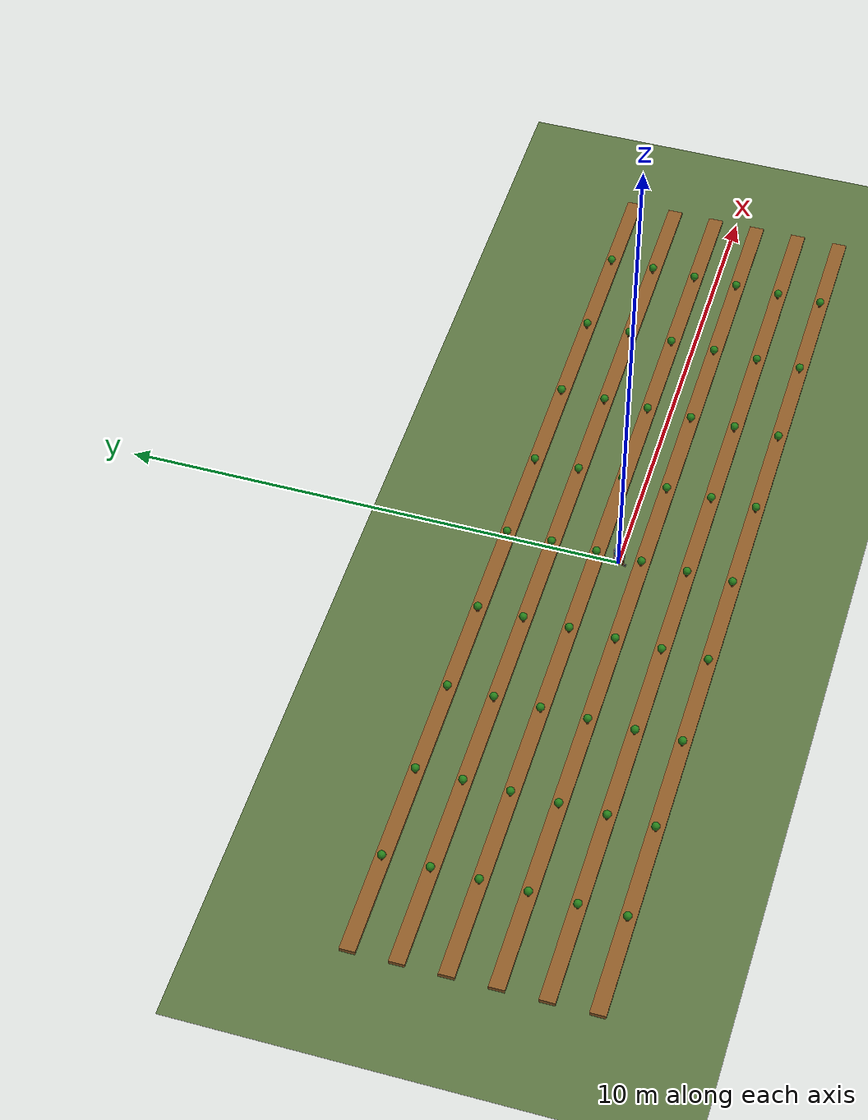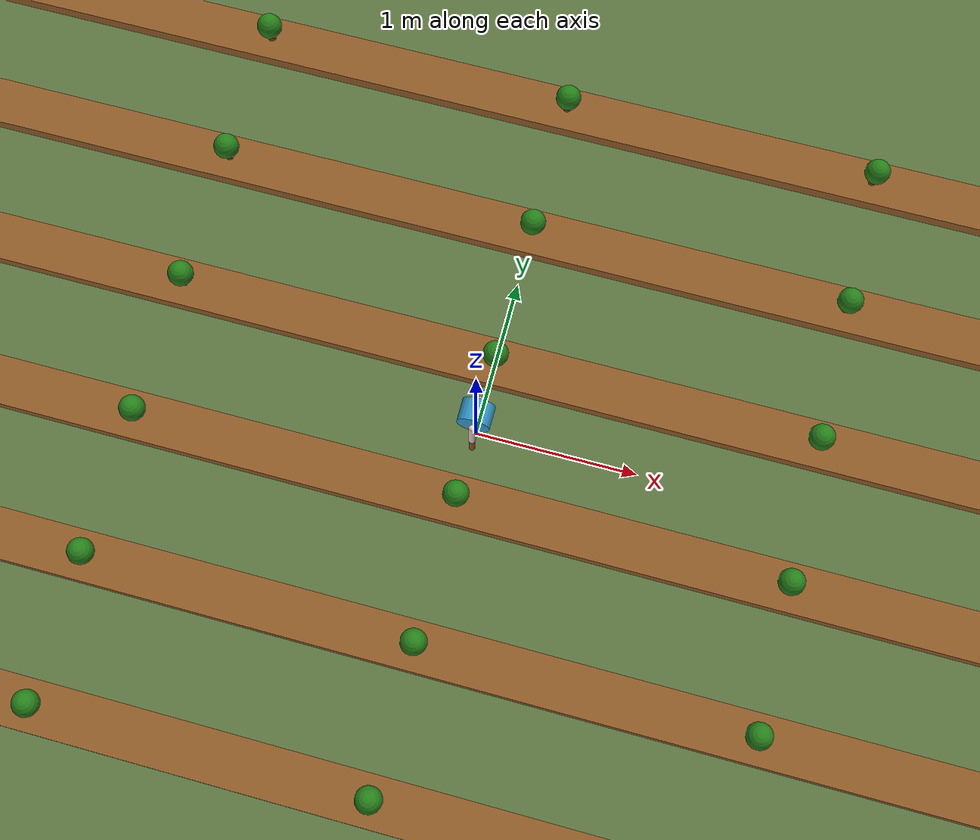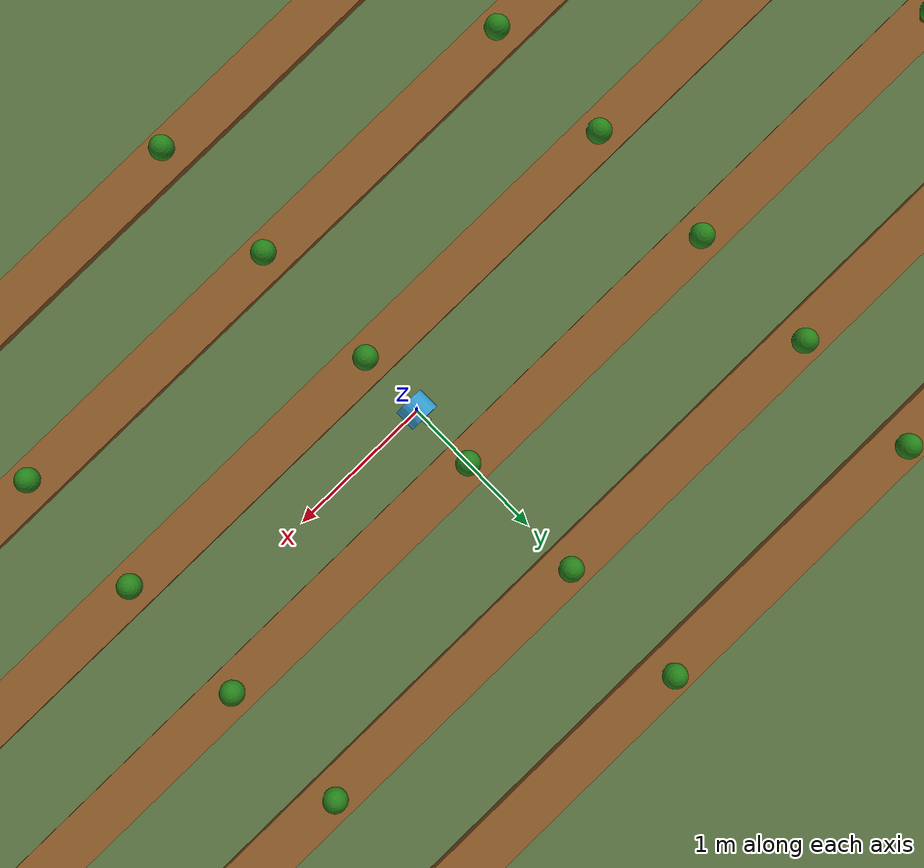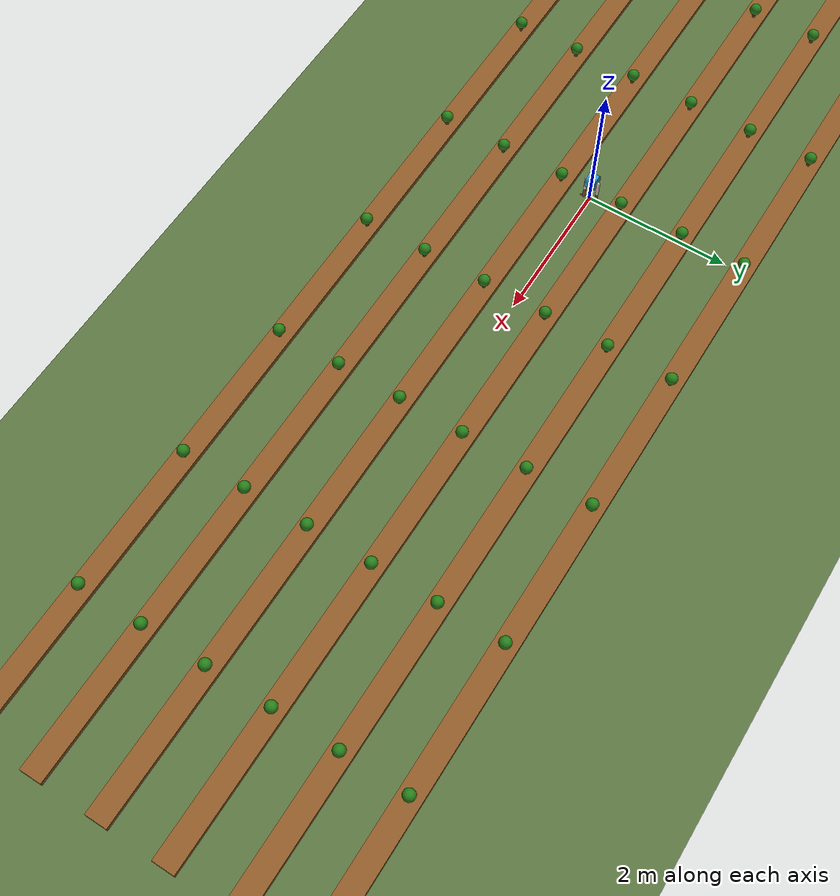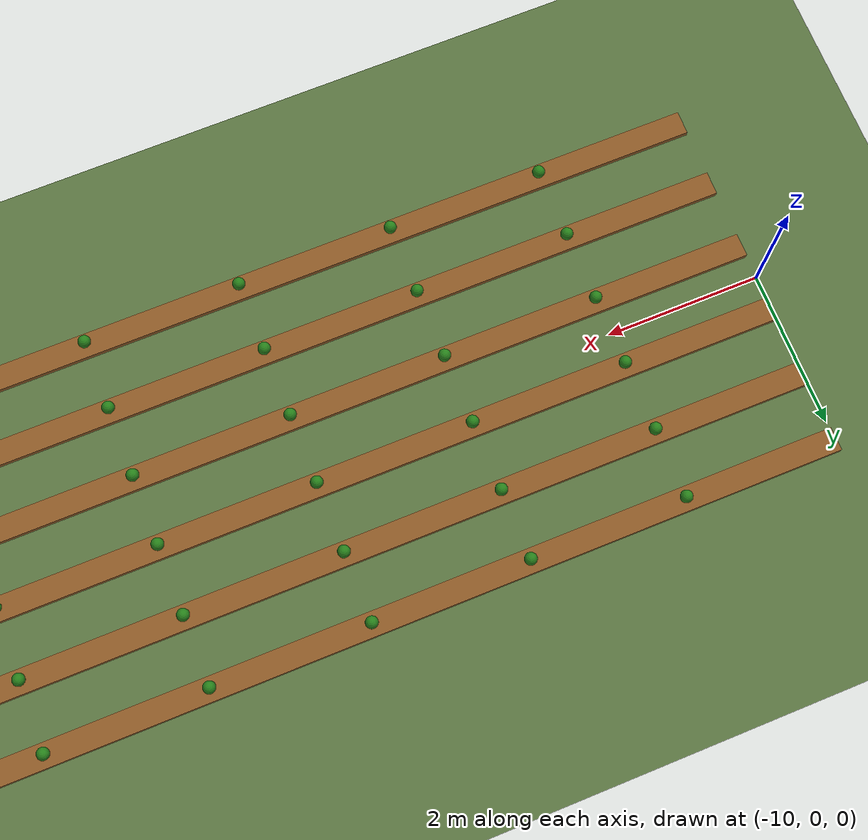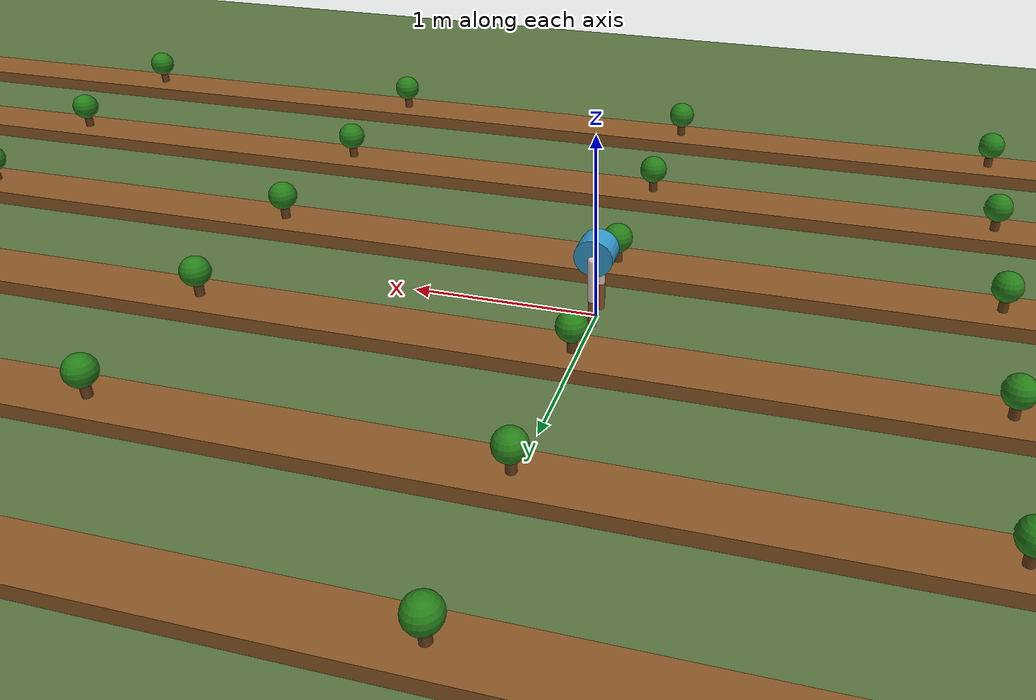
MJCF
<mujoco model="SeBaJu_Bot">

    <option timestep="0.002" gravity="0 0 -9.81" integrator="RK4"
            iterations="50" tolerance="1e-10"/>
    <compiler angle="radian"/>

    <default>
        <joint damping="0.5" armature="0.01" stiffness="0" frictionloss="0.02"/>
        <geom friction="1 0.05 0.01"/>
    </default>

    <keyframe>
        <key name="stand" qpos="0 0 0.371  1 0 0 0  0 0 0  0 0 0"/>
    </keyframe>

    <asset>
        <material name="torso_mat" rgba="0.2 0.6 0.8 1"/>
        <material name="thigh_mat" rgba="0.86 0.78 0.74 1"/>
        <material name="shank_mat" rgba="0.55 0.33 0.14 1"/>
        <material name="wheel_mat" rgba="0.05 0.05 0.05 1"/>
        <material name="ground_mat" rgba="0.35 0.45 0.25 1"/>
        <material name="ridge_mat"  rgba="0.55 0.35 0.15 1"/>
    </asset>

    <worldbody>
        <light pos="0 0 8" dir="0 0 -1" diffuse="0.9 0.9 0.9" castshadow="true"/>
        <light pos="5 0 4" dir="-1 0 -1" diffuse="0.4 0.4 0.4" castshadow="false"/>

        <!--═══════════════════════════════════════════════════════════
        GROUND PLANE — represents soil floor of the field
        ═══════════════════════════════════════════════════════════════-->
        <geom name="ground" type="plane" size="20 5 0.1"
              material="ground_mat"
              contype="1" conaffinity="1"
              friction="1.0 0.3 0.01"/>

        <!-- Ridge 1 -->
        <geom name="ridge_1" type="box" size="10.0 0.15 0.04"
              pos="0 -2.25 0.04"
              material="ridge_mat"
              contype="0" conaffinity="0"/>

        <!-- Ridge 2 -->
        <geom name="ridge_2" type="box" size="10.0 0.15 0.04"
              pos="0 -1.35 0.04"
              material="ridge_mat"
              contype="0" conaffinity="0"/>

        <!-- Ridge 3 -->
        <geom name="ridge_3" type="box" size="10.0 0.15 0.04"
              pos="0 -0.45 0.04"
              material="ridge_mat"
              contype="0" conaffinity="0"/>

        <!-- Ridge 4 (robot starts in gap between ridge 3 and 4) -->
        <geom name="ridge_4" type="box" size="10.0 0.15 0.04"
              pos="0 +0.45 0.04"
              material="ridge_mat"
              contype="0" conaffinity="0"/>

        <!-- Ridge 5 -->
        <geom name="ridge_5" type="box" size="10.0 0.15 0.04"
              pos="0 +1.35 0.04"
              material="ridge_mat"
              contype="0" conaffinity="0"/>

        <!-- Ridge 6 -->
        <geom name="ridge_6" type="box" size="10.0 0.15 0.04"
              pos="0 +2.25 0.04"
              material="ridge_mat"
              contype="0" conaffinity="0"/>

        <!-- ── RIDGE 1  y=-2.25 ── -->
        <geom type="cylinder" size="0.025 0.05" pos="-8 -2.25 0.09" rgba="0.40 0.25 0.10 1" contype="0" conaffinity="0"/>
        <geom type="sphere"   size="0.08"      pos="-8 -2.25 0.22" rgba="0.15 0.50 0.10 1" contype="0" conaffinity="0"/>
        <geom type="cylinder" size="0.025 0.05" pos="-6 -2.25 0.09" rgba="0.40 0.25 0.10 1" contype="0" conaffinity="0"/>
        <geom type="sphere"   size="0.08"      pos="-6 -2.25 0.22" rgba="0.15 0.50 0.10 1" contype="0" conaffinity="0"/>
        <geom type="cylinder" size="0.025 0.05" pos="-4 -2.25 0.09" rgba="0.40 0.25 0.10 1" contype="0" conaffinity="0"/>
        <geom type="sphere"   size="0.08"      pos="-4 -2.25 0.22" rgba="0.15 0.50 0.10 1" contype="0" conaffinity="0"/>
        <geom type="cylinder" size="0.025 0.05" pos="-2 -2.25 0.09" rgba="0.40 0.25 0.10 1" contype="0" conaffinity="0"/>
        <geom type="sphere"   size="0.08"      pos="-2 -2.25 0.22" rgba="0.15 0.50 0.10 1" contype="0" conaffinity="0"/>
        <geom type="cylinder" size="0.025 0.05" pos=" 0 -2.25 0.09" rgba="0.40 0.25 0.10 1" contype="0" conaffinity="0"/>
        <geom type="sphere"   size="0.08"      pos=" 0 -2.25 0.22" rgba="0.15 0.50 0.10 1" contype="0" conaffinity="0"/>
        <geom type="cylinder" size="0.025 0.05" pos=" 2 -2.25 0.09" rgba="0.40 0.25 0.10 1" contype="0" conaffinity="0"/>
        <geom type="sphere"   size="0.08"      pos=" 2 -2.25 0.22" rgba="0.15 0.50 0.10 1" contype="0" conaffinity="0"/>
        <geom type="cylinder" size="0.025 0.05" pos=" 4 -2.25 0.09" rgba="0.40 0.25 0.10 1" contype="0" conaffinity="0"/>
        <geom type="sphere"   size="0.08"      pos=" 4 -2.25 0.22" rgba="0.15 0.50 0.10 1" contype="0" conaffinity="0"/>
        <geom type="cylinder" size="0.025 0.05" pos=" 6 -2.25 0.09" rgba="0.40 0.25 0.10 1" contype="0" conaffinity="0"/>
        <geom type="sphere"   size="0.08"      pos=" 6 -2.25 0.22" rgba="0.15 0.50 0.10 1" contype="0" conaffinity="0"/>
        <geom type="cylinder" size="0.025 0.05" pos=" 8 -2.25 0.09" rgba="0.40 0.25 0.10 1" contype="0" conaffinity="0"/>
        <geom type="sphere"   size="0.08"      pos=" 8 -2.25 0.22" rgba="0.15 0.50 0.10 1" contype="0" conaffinity="0"/>

        <!-- ── RIDGE 2  y=-1.35 ── -->
        <geom type="cylinder" size="0.025 0.05" pos="-8 -1.35 0.09" rgba="0.40 0.25 0.10 1" contype="0" conaffinity="0"/>
        <geom type="sphere"   size="0.08"      pos="-8 -1.35 0.22" rgba="0.15 0.50 0.10 1" contype="0" conaffinity="0"/>
        <geom type="cylinder" size="0.025 0.05" pos="-6 -1.35 0.09" rgba="0.40 0.25 0.10 1" contype="0" conaffinity="0"/>
        <geom type="sphere"   size="0.08"      pos="-6 -1.35 0.22" rgba="0.15 0.50 0.10 1" contype="0" conaffinity="0"/>
        <geom type="cylinder" size="0.025 0.05" pos="-4 -1.35 0.09" rgba="0.40 0.25 0.10 1" contype="0" conaffinity="0"/>
        <geom type="sphere"   size="0.08"      pos="-4 -1.35 0.22" rgba="0.15 0.50 0.10 1" contype="0" conaffinity="0"/>
        <geom type="cylinder" size="0.025 0.05" pos="-2 -1.35 0.09" rgba="0.40 0.25 0.10 1" contype="0" conaffinity="0"/>
        <geom type="sphere"   size="0.08"      pos="-2 -1.35 0.22" rgba="0.15 0.50 0.10 1" contype="0" conaffinity="0"/>
        <geom type="cylinder" size="0.025 0.05" pos=" 0 -1.35 0.09" rgba="0.40 0.25 0.10 1" contype="0" conaffinity="0"/>
        <geom type="sphere"   size="0.08"      pos=" 0 -1.35 0.22" rgba="0.15 0.50 0.10 1" contype="0" conaffinity="0"/>
        <geom type="cylinder" size="0.025 0.05" pos=" 2 -1.35 0.09" rgba="0.40 0.25 0.10 1" contype="0" conaffinity="0"/>
        <geom type="sphere"   size="0.08"      pos=" 2 -1.35 0.22" rgba="0.15 0.50 0.10 1" contype="0" conaffinity="0"/>
        <geom type="cylinder" size="0.025 0.05" pos=" 4 -1.35 0.09" rgba="0.40 0.25 0.10 1" contype="0" conaffinity="0"/>
        <geom type="sphere"   size="0.08"      pos=" 4 -1.35 0.22" rgba="0.15 0.50 0.10 1" contype="0" conaffinity="0"/>
        <geom type="cylinder" size="0.025 0.05" pos=" 6 -1.35 0.09" rgba="0.40 0.25 0.10 1" contype="0" conaffinity="0"/>
        <geom type="sphere"   size="0.08"      pos=" 6 -1.35 0.22" rgba="0.15 0.50 0.10 1" contype="0" conaffinity="0"/>
        <geom type="cylinder" size="0.025 0.05" pos=" 8 -1.35 0.09" rgba="0.40 0.25 0.10 1" contype="0" conaffinity="0"/>
        <geom type="sphere"   size="0.08"      pos=" 8 -1.35 0.22" rgba="0.15 0.50 0.10 1" contype="0" conaffinity="0"/>

        <!-- ── RIDGE 3  y=-0.45 ── -->
        <geom type="cylinder" size="0.025 0.05" pos="-8 -0.45 0.09" rgba="0.40 0.25 0.10 1" contype="0" conaffinity="0"/>
        <geom type="sphere"   size="0.08"      pos="-8 -0.45 0.22" rgba="0.15 0.50 0.10 1" contype="0" conaffinity="0"/>
        <geom type="cylinder" size="0.025 0.05" pos="-6 -0.45 0.09" rgba="0.40 0.25 0.10 1" contype="0" conaffinity="0"/>
        <geom type="sphere"   size="0.08"      pos="-6 -0.45 0.22" rgba="0.15 0.50 0.10 1" contype="0" conaffinity="0"/>
        <geom type="cylinder" size="0.025 0.05" pos="-4 -0.45 0.09" rgba="0.40 0.25 0.10 1" contype="0" conaffinity="0"/>
        <geom type="sphere"   size="0.08"      pos="-4 -0.45 0.22" rgba="0.15 0.50 0.10 1" contype="0" conaffinity="0"/>
        <geom type="cylinder" size="0.025 0.05" pos="-2 -0.45 0.09" rgba="0.40 0.25 0.10 1" contype="0" conaffinity="0"/>
        <geom type="sphere"   size="0.08"      pos="-2 -0.45 0.22" rgba="0.15 0.50 0.10 1" contype="0" conaffinity="0"/>
        <geom type="cylinder" size="0.025 0.05" pos=" 0 -0.45 0.09" rgba="0.40 0.25 0.10 1" contype="0" conaffinity="0"/>
        <geom type="sphere"   size="0.08"      pos=" 0 -0.45 0.22" rgba="0.15 0.50 0.10 1" contype="0" conaffinity="0"/>
        <geom type="cylinder" size="0.025 0.05" pos=" 2 -0.45 0.09" rgba="0.40 0.25 0.10 1" contype="0" conaffinity="0"/>
        <geom type="sphere"   size="0.08"      pos=" 2 -0.45 0.22" rgba="0.15 0.50 0.10 1" contype="0" conaffinity="0"/>
        <geom type="cylinder" size="0.025 0.05" pos=" 4 -0.45 0.09" rgba="0.40 0.25 0.10 1" contype="0" conaffinity="0"/>
        <geom type="sphere"   size="0.08"      pos=" 4 -0.45 0.22" rgba="0.15 0.50 0.10 1" contype="0" conaffinity="0"/>
        <geom type="cylinder" size="0.025 0.05" pos=" 6 -0.45 0.09" rgba="0.40 0.25 0.10 1" contype="0" conaffinity="0"/>
        <geom type="sphere"   size="0.08"      pos=" 6 -0.45 0.22" rgba="0.15 0.50 0.10 1" contype="0" conaffinity="0"/>
        <geom type="cylinder" size="0.025 0.05" pos=" 8 -0.45 0.09" rgba="0.40 0.25 0.10 1" contype="0" conaffinity="0"/>
        <geom type="sphere"   size="0.08"      pos=" 8 -0.45 0.22" rgba="0.15 0.50 0.10 1" contype="0" conaffinity="0"/>

        <!-- ── RIDGE 4  y=+0.45 ── -->
        <geom type="cylinder" size="0.025 0.05" pos="-8  0.45 0.09" rgba="0.40 0.25 0.10 1" contype="0" conaffinity="0"/>
        <geom type="sphere"   size="0.08"      pos="-8  0.45 0.22" rgba="0.15 0.50 0.10 1" contype="0" conaffinity="0"/>
        <geom type="cylinder" size="0.025 0.05" pos="-6  0.45 0.09" rgba="0.40 0.25 0.10 1" contype="0" conaffinity="0"/>
        <geom type="sphere"   size="0.08"      pos="-6  0.45 0.22" rgba="0.15 0.50 0.10 1" contype="0" conaffinity="0"/>
        <geom type="cylinder" size="0.025 0.05" pos="-4  0.45 0.09" rgba="0.40 0.25 0.10 1" contype="0" conaffinity="0"/>
        <geom type="sphere"   size="0.08"      pos="-4  0.45 0.22" rgba="0.15 0.50 0.10 1" contype="0" conaffinity="0"/>
        <geom type="cylinder" size="0.025 0.05" pos="-2  0.45 0.09" rgba="0.40 0.25 0.10 1" contype="0" conaffinity="0"/>
        <geom type="sphere"   size="0.08"      pos="-2  0.45 0.22" rgba="0.15 0.50 0.10 1" contype="0" conaffinity="0"/>
        <geom type="cylinder" size="0.025 0.05" pos=" 0  0.45 0.09" rgba="0.40 0.25 0.10 1" contype="0" conaffinity="0"/>
        <geom type="sphere"   size="0.08"      pos=" 0  0.45 0.22" rgba="0.15 0.50 0.10 1" contype="0" conaffinity="0"/>
        <geom type="cylinder" size="0.025 0.05" pos=" 2  0.45 0.09" rgba="0.40 0.25 0.10 1" contype="0" conaffinity="0"/>
        <geom type="sphere"   size="0.08"      pos=" 2  0.45 0.22" rgba="0.15 0.50 0.10 1" contype="0" conaffinity="0"/>
        <geom type="cylinder" size="0.025 0.05" pos=" 4  0.45 0.09" rgba="0.40 0.25 0.10 1" contype="0" conaffinity="0"/>
        <geom type="sphere"   size="0.08"      pos=" 4  0.45 0.22" rgba="0.15 0.50 0.10 1" contype="0" conaffinity="0"/>
        <geom type="cylinder" size="0.025 0.05" pos=" 6  0.45 0.09" rgba="0.40 0.25 0.10 1" contype="0" conaffinity="0"/>
        <geom type="sphere"   size="0.08"      pos=" 6  0.45 0.22" rgba="0.15 0.50 0.10 1" contype="0" conaffinity="0"/>
        <geom type="cylinder" size="0.025 0.05" pos=" 8  0.45 0.09" rgba="0.40 0.25 0.10 1" contype="0" conaffinity="0"/>
        <geom type="sphere"   size="0.08"      pos=" 8  0.45 0.22" rgba="0.15 0.50 0.10 1" contype="0" conaffinity="0"/>

        <!-- ── RIDGE 5  y=+1.35 ── -->
        <geom type="cylinder" size="0.025 0.05" pos="-8  1.35 0.09" rgba="0.40 0.25 0.10 1" contype="0" conaffinity="0"/>
        <geom type="sphere"   size="0.08"      pos="-8  1.35 0.22" rgba="0.15 0.50 0.10 1" contype="0" conaffinity="0"/>
        <geom type="cylinder" size="0.025 0.05" pos="-6  1.35 0.09" rgba="0.40 0.25 0.10 1" contype="0" conaffinity="0"/>
        <geom type="sphere"   size="0.08"      pos="-6  1.35 0.22" rgba="0.15 0.50 0.10 1" contype="0" conaffinity="0"/>
        <geom type="cylinder" size="0.025 0.05" pos="-4  1.35 0.09" rgba="0.40 0.25 0.10 1" contype="0" conaffinity="0"/>
        <geom type="sphere"   size="0.08"      pos="-4  1.35 0.22" rgba="0.15 0.50 0.10 1" contype="0" conaffinity="0"/>
        <geom type="cylinder" size="0.025 0.05" pos="-2  1.35 0.09" rgba="0.40 0.25 0.10 1" contype="0" conaffinity="0"/>
        <geom type="sphere"   size="0.08"      pos="-2  1.35 0.22" rgba="0.15 0.50 0.10 1" contype="0" conaffinity="0"/>
        <geom type="cylinder" size="0.025 0.05" pos=" 0  1.35 0.09" rgba="0.40 0.25 0.10 1" contype="0" conaffinity="0"/>
        <geom type="sphere"   size="0.08"      pos=" 0  1.35 0.22" rgba="0.15 0.50 0.10 1" contype="0" conaffinity="0"/>
        <geom type="cylinder" size="0.025 0.05" pos=" 2  1.35 0.09" rgba="0.40 0.25 0.10 1" contype="0" conaffinity="0"/>
        <geom type="sphere"   size="0.08"      pos=" 2  1.35 0.22" rgba="0.15 0.50 0.10 1" contype="0" conaffinity="0"/>
        <geom type="cylinder" size="0.025 0.05" pos=" 4  1.35 0.09" rgba="0.40 0.25 0.10 1" contype="0" conaffinity="0"/>
        <geom type="sphere"   size="0.08"      pos=" 4  1.35 0.22" rgba="0.15 0.50 0.10 1" contype="0" conaffinity="0"/>
        <geom type="cylinder" size="0.025 0.05" pos=" 6  1.35 0.09" rgba="0.40 0.25 0.10 1" contype="0" conaffinity="0"/>
        <geom type="sphere"   size="0.08"      pos=" 6  1.35 0.22" rgba="0.15 0.50 0.10 1" contype="0" conaffinity="0"/>
        <geom type="cylinder" size="0.025 0.05" pos=" 8  1.35 0.09" rgba="0.40 0.25 0.10 1" contype="0" conaffinity="0"/>
        <geom type="sphere"   size="0.08"      pos=" 8  1.35 0.22" rgba="0.15 0.50 0.10 1" contype="0" conaffinity="0"/>

        <!-- ── RIDGE 6  y=+2.25 ── -->
        <geom type="cylinder" size="0.025 0.05" pos="-8  2.25 0.09" rgba="0.40 0.25 0.10 1" contype="0" conaffinity="0"/>
        <geom type="sphere"   size="0.08"      pos="-8  2.25 0.22" rgba="0.15 0.50 0.10 1" contype="0" conaffinity="0"/>
        <geom type="cylinder" size="0.025 0.05" pos="-6  2.25 0.09" rgba="0.40 0.25 0.10 1" contype="0" conaffinity="0"/>
        <geom type="sphere"   size="0.08"      pos="-6  2.25 0.22" rgba="0.15 0.50 0.10 1" contype="0" conaffinity="0"/>
        <geom type="cylinder" size="0.025 0.05" pos="-4  2.25 0.09" rgba="0.40 0.25 0.10 1" contype="0" conaffinity="0"/>
        <geom type="sphere"   size="0.08"      pos="-4  2.25 0.22" rgba="0.15 0.50 0.10 1" contype="0" conaffinity="0"/>
        <geom type="cylinder" size="0.025 0.05" pos="-2  2.25 0.09" rgba="0.40 0.25 0.10 1" contype="0" conaffinity="0"/>
        <geom type="sphere"   size="0.08"      pos="-2  2.25 0.22" rgba="0.15 0.50 0.10 1" contype="0" conaffinity="0"/>
        <geom type="cylinder" size="0.025 0.05" pos=" 0  2.25 0.09" rgba="0.40 0.25 0.10 1" contype="0" conaffinity="0"/>
        <geom type="sphere"   size="0.08"      pos=" 0  2.25 0.22" rgba="0.15 0.50 0.10 1" contype="0" conaffinity="0"/>
        <geom type="cylinder" size="0.025 0.05" pos=" 2  2.25 0.09" rgba="0.40 0.25 0.10 1" contype="0" conaffinity="0"/>
        <geom type="sphere"   size="0.08"      pos=" 2  2.25 0.22" rgba="0.15 0.50 0.10 1" contype="0" conaffinity="0"/>
        <geom type="cylinder" size="0.025 0.05" pos=" 4  2.25 0.09" rgba="0.40 0.25 0.10 1" contype="0" conaffinity="0"/>
        <geom type="sphere"   size="0.08"      pos=" 4  2.25 0.22" rgba="0.15 0.50 0.10 1" contype="0" conaffinity="0"/>
        <geom type="cylinder" size="0.025 0.05" pos=" 6  2.25 0.09" rgba="0.40 0.25 0.10 1" contype="0" conaffinity="0"/>
        <geom type="sphere"   size="0.08"      pos=" 6  2.25 0.22" rgba="0.15 0.50 0.10 1" contype="0" conaffinity="0"/>
        <geom type="cylinder" size="0.025 0.05" pos=" 8  2.25 0.09" rgba="0.40 0.25 0.10 1" contype="0" conaffinity="0"/>
        <geom type="sphere"   size="0.08"      pos=" 8  2.25 0.22" rgba="0.15 0.50 0.10 1" contype="0" conaffinity="0"/>

        <body name="base" pos="0 0 0.371">
            <joint name="root" type="free"/>
            <!-- CoM lowered: from z=0.06 to z=0.00 (base pivot level).
                 Torso geom and IMU site shifted down commensurately. -->
            <inertial pos="0 0 0.00" mass="2.5" diaginertia="0.02 0.02 0.01"/>

            <geom type="cylinder" size="0.10 0.07"
                  pos="0.0 0 0.00"
                  quat="0.7071 0.7071 0 0"
                  material="torso_mat"
                  contype="1" conaffinity="1"/>

            <!-- IMU site at top of torso
            at top of torso cylinder (half-length 0.07 m above pivot)-->
            <site name="imu_site" pos="0.0 0 0.07" size="0.01" rgba="1 1 0 1" euler="0 0 0"/>

            <body name="left_leg" pos="0 0.09 0">
                <!--Changed ref to -ve to align with -X axis coordinate
                expanded range as ref=-0.60 increased to -0.785 ("-0.96 0.96 >> -1.20 0.40")-->
                <joint name="left_hip" type="hinge"
                       axis="0 1 0"
                       range="-1.20 0.40"
                       ref="-0.785"
                       damping="1.5" frictionloss="0.05"/>
                  <!--changed quat to 1 0 0 0 ~ no rotation; ref provides required orientation-->
                <geom name="left_thigh" type="capsule"
                      pos="0 0 -0.11"
                      size="0.022 0.11"
                      quat="1 0 0 0"
                      material="thigh_mat"
                      mass="0.20" contype="1" conaffinity="1"/>

                <body name="left_shank" pos="0 0 -0.22">
                    <joint name="left_knee" type="hinge"
                           axis="0 1 0"
                           range="0.20 1.80"
                           ref="1.571"
                           springref="1.571"
                           stiffness="5" damping="2.0"/>
                      <!--changed quat to 1 0 0 0 ~ no rotation; ref provides required orientation-->
                    <geom name="left_shank_geom" type="capsule"
                          pos="0 0 -0.11"
                          size="0.020 0.11"
                          quat="1 0 0 0"
                          material="shank_mat"
                          mass="0.15" contype="1" conaffinity="1"/>

                    <body name="left_wheel_body" pos="0 0.025 -0.22">
                        <joint name="left_wheel_joint" type="hinge"
                               axis="0 1 0" damping="0.05" armature="0.05"/>

                        <geom type="cylinder" size="0.06 0.025"
                              quat="0.7071 0.7071 0 0"
                              material="wheel_mat"
                              mass="0.3" contype="1" conaffinity="1"
                              friction="1.5 0.3 0.01" pos="0 0.012 0"/>
                    </body>
                </body>
            </body>

            <body name="right_leg" pos="0 -0.09 0">

                <joint name="right_hip" type="hinge"
                       axis="0 1 0"
                       range="-1.20 0.40"
                       ref="-0.785"
                       damping="1.5" frictionloss="0.05"/>

                <geom name="right_thigh" type="capsule"
                      pos="0 0 -0.11"
                      size="0.022 0.11"
                      quat="1 0 0 0"
                      material="thigh_mat"
                      mass="0.20" contype="1" conaffinity="1"/>

                <body name="right_shank" pos="0 0 -0.22">

                    <joint name="right_knee" type="hinge"
                           axis="0 1 0"
                           range="0.20 1.80"
                           ref="1.571"
                           springref="1.571"
                           stiffness="5" damping="2.0"/>

                    <geom name="right_shank_geom" type="capsule"
                          pos="0 0 -0.11"
                          size="0.020 0.11"
                          quat="1 0 0 0"
                          material="shank_mat"
                          mass="0.15" contype="1" conaffinity="1"/>

                    <body name="right_wheel_body" pos="0 -0.025 -0.22">
                        <joint name="right_wheel_joint" type="hinge"
                               axis="0 1 0" damping="0.05" armature="0.05"/>

                        <geom type="cylinder" size="0.06 0.025"
                              quat="0.7071 0.7071 0 0"
                              material="wheel_mat"
                              mass="0.3" contype="1" conaffinity="1"
                              friction="1.5 0.3 0.01" pos="0 -0.012 0"/>
                    </body>
                </body>
            </body>

        </body><!-- end base -->
    </worldbody>

    <equality>
        <joint joint1="left_hip"   joint2="right_hip"  polycoef="0 1 0 0 0"
               solimp="0.9 0.95 0.001" solref="0.02 1"/>
        <joint joint1="left_knee"  joint2="right_knee" polycoef="0 1 0 0 0"
               solimp="0.9 0.95 0.001" solref="0.02 1"/>
    </equality>

    <actuator>
        <motor name="left_hip_motor"    joint="left_hip"          gear="50" ctrlrange="-1 1"/>
        <motor name="right_hip_motor"   joint="right_hip"         gear="50" ctrlrange="-1 1"/>
        <motor name="left_knee_motor"   joint="left_knee"         gear="50" ctrlrange="-1 1"/>
        <motor name="right_knee_motor"  joint="right_knee"        gear="50" ctrlrange="-1 1"/>
        <motor name="left_wheel_motor"  joint="left_wheel_joint"  gear="30" ctrlrange="-1 1"/>
        <motor name="right_wheel_motor" joint="right_wheel_joint" gear="30" ctrlrange="-1 1"/>
    </actuator>

    <sensor>
        <framequat     name="imu_orientation"     objtype="site" objname="imu_site"/>
        <gyro          name="imu_gyro"             site="imu_site"/>
        <accelerometer name="imu_accel"            site="imu_site"/>
        <jointpos      name="left_wheel_encoder"   joint="left_wheel_joint"/>
        <jointvel      name="left_wheel_velocity"  joint="left_wheel_joint"/>
        <jointpos      name="right_wheel_encoder"  joint="right_wheel_joint"/>
        <jointvel      name="right_wheel_velocity" joint="right_wheel_joint"/>
    </sensor>

</mujoco>
